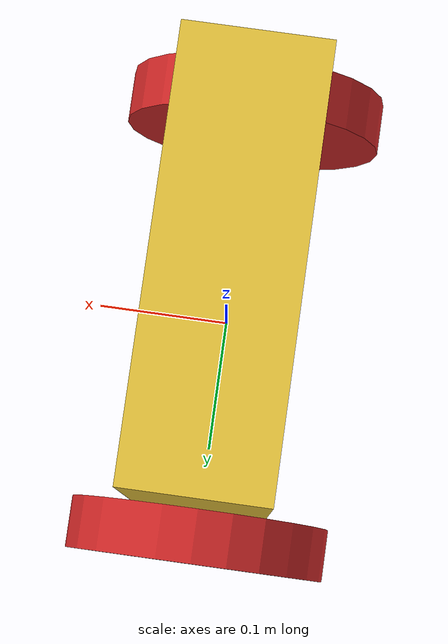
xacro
<?xml version="1.0" ?>
<robot name="2wheel" xmlns:xacro="http://www.ros.org/wiki/xacro">

  <material name="black">
    <color rgba="0.0 0.0 0.0 1.0"/>
  </material>
  <material name="blue">
    <color rgba="0.203125 0.23828125 0.28515625 1.0"/>
  </material>
  <material name="green">
    <color rgba="0.0 0.8 0.0 1.0"/>
  </material>
  <material name="grey">
    <color rgba="0.2 0.2 0.2 1.0"/>
  </material>
  <material name="orange">
    <color rgba="1.0 0.423529411765 0.0392156862745 1.0"/>
  </material>
  <material name="brown">
    <color rgba="0.870588235294 0.811764705882 0.764705882353 1.0"/>
  </material>
  <material name="red">
    <color rgba="0.80078125 0.12890625 0.1328125 1.0"/>
  </material>
  <material name="white">
    <color rgba="1.0 1.0 1.0 1.0"/>
  </material>
  <material name="plank">
    <color rgba="0.9098 0.77255 0.2314 1.0"/>
  </material>

<!-- Start: For URDF to Gazebo compatibility -->
	<!-- LINKS -->
  <gazebo reference="link_chassis">
    <material>Gazebo/Yellow</material>
		<disableFixedJointLumping>true</disableFixedJointLumping>
		<preserveFixedJoint>true</preserveFixedJoint>
  </gazebo>
  <gazebo reference="link_left_wheel">
    <material>Gazebo/Red</material>
    <mu1>0.4</mu1>
    <mu2>0.4</mu2>
  </gazebo>
  <gazebo reference="link_right_wheel">
    <material>Gazebo/Red</material>
    <mu1>0.4</mu1>
    <mu2>0.4</mu2>
  </gazebo>
	<!-- JOINTS -->
  <gazebo reference="joint_right_wheel">
		<axis>
			<xyz>0 1 0</xyz>
			<dynamics>
		    <damping>5</damping>
		    <friction>0</friction>
		    <spring_reference>-0.7853981633974483</spring_reference>
		    <spring_stiffness>7</spring_stiffness>
		  </dynamics>
		</axis>
  </gazebo>
  <gazebo reference="joint_left_wheel">
  </gazebo>

  <gazebo>
    <plugin filename="libgazebo_ros_diff_drive.so" name="differential_drive_controller">
      <legacyMode>false</legacyMode>
      <alwaysOn>true</alwaysOn>
      <updateRate>10</updateRate>
      <leftJoint>joint_left_wheel</leftJoint>
      <rightJoint>joint_right_wheel</rightJoint>
      <wheelSeparation>0.34</wheelSeparation>
      <wheelDiameter>0.2</wheelDiameter>
      <wheelTorque>0.8</wheelTorque>
      <commandTopic>cmd_vel</commandTopic>
      <odometryTopic>odom</odometryTopic>
      <odometryFrame>odom</odometryFrame>
      <robotBaseFrame>link_chassis</robotBaseFrame>
    </plugin>
  </gazebo>

  <gazebo>
      <plugin name="imu_plugin" filename="libgazebo_ros_imu.so">
          <alwaysOn>true</alwaysOn>
					<updateRate>100</updateRate>
          <bodyName>dummy_link</bodyName>
          <topicName>imu</topicName>
          <serviceName>imu_service</serviceName>
          <gaussianNoise>0.0</gaussianNoise>
          <rpyOffsets>0 0 0</rpyOffsets>
					<xyzOffset>0 0 0.3</xyzOffset>

          <accelDrift>0.5 0.5 0.5</accelDrift>
          <accelGaussianNoise>0.35 0.35 0.3</accelGaussianNoise>
          <rateDrift>0.0 0.0 0.0</rateDrift>
          <rateGaussianNoise>0.00 0.00 0.00</rateGaussianNoise>
          <headingDrift>0.0</headingDrift>
          <headingGaussianNoise>0.00</headingGaussianNoise>
      </plugin>
   </gazebo>
<!-- xyzOffset is a workaround for problem. check generated code with gz sdf -p 2wheel.xacro-->

<!-- End: For URDF to Gazebo compatibility -->

	<link name="dummy_link"/>
	<link name="imu_link">
    <inertial>
      <mass value="0.0001"/>
      <origin rpy="0 0 0" xyz="0 0 0"/>
      <inertia ixx="0.000001" ixy="0" ixz="0" iyy="0.000001" iyz="0" izz="0.000001"/>
    </inertial>
  </link>

  <link name="link_chassis">
    <!-- pose and inertial -->
    <pose>0 0 0.1 0 0 0</pose>
    <inertial>
      <mass value="2"/>
      <origin rpy="0 0 0" xyz="0 0 0.3"/>
      <inertia ixx="0.075" ixy="0" ixz="0" iyy="0.061667" iyz="0" izz="0.01667"/>
    </inertial>
    <!-- body -->
    <collision name="collision_chassis">
      <origin rpy="0 0 0" xyz="0 0 0.3"/>
      <geometry>
        <box size="0.1 0.3 0.6"/>
      </geometry>
    </collision>
    <visual>
			<origin rpy="0 0 0" xyz="0 0 0"/>
      <geometry>
       	<box size="0.1 0.3 0.6"/>
      </geometry>
      <material name="plank"/>
    </visual>
  </link>

	<joint name="base_joint" type="fixed">
    <origin rpy="0 0 0" xyz="0 0 0"/>
		<child link="link_chassis"/>
    <parent link="dummy_link"/>
  </joint>
	<joint name="imu_joint" type="fixed">
    <origin rpy="0 0 0" xyz="0 0 0.3"/>
		<child link="imu_link"/>
    <parent link="link_chassis"/>
  </joint>

  <link name="link_left_wheel">
    <inertial>
      <mass value="0.2"/>
      <origin rpy="0 1.5707 1.5707" xyz="0 0 0"/>
      <inertia ixx="0.001" ixy="0" ixz="0" iyy="0.0005" iyz="0" izz="0.0005"/>
    </inertial>
    <collision name="link_left_wheel_collision">
      <origin rpy="0 1.5707 1.5707" xyz="0 0 0"/>
      <geometry>
        <cylinder length="0.04" radius="0.1"/>
      </geometry>
    </collision>
    <visual name="link_left_wheel_visual">
      <origin rpy="0 1.5707 1.5707" xyz="0 0 0"/>
      <geometry>
        <cylinder length="0.04" radius="0.1"/>
      </geometry>
    </visual>
  </link>

  <joint name="joint_left_wheel" type="continuous">
    <origin rpy="0 0 0" xyz="0 0.17 0"/>
    <child link="link_left_wheel"/>
    <parent link="link_chassis"/>
    <axis rpy="0 0 0" xyz="0 1 0"/>
    <limit effort="0.8" velocity="30"/>
    <joint_properties damping="0.0005" friction="0.0005"/>  <!-- damping coefficient: [N*m*s/rad] -->
		<safety_controller k_velocity="0.026"/>  <!-- Kv en este caso: Torque/vel (http://wiki.ros.org/pr2_controller_manager/safety_limits) -->
  </joint>

  <link name="link_right_wheel">
    <inertial>
      <mass value="0.2"/>
      <origin rpy="0 1.5707 1.5707" xyz="0 0 0"/>
      <inertia ixx="0.001" ixy="0" ixz="0" iyy="0.0005" iyz="0" izz="0.0005"/>
    </inertial>
    <collision name="link_right_wheel_collision">
      <origin rpy="0 1.5707 1.5707" xyz="0 0 0"/>
      <geometry>
        <cylinder length="0.04" radius="0.1"/>
      </geometry>
    </collision>
    <visual name="link_right_wheel_visual">
      <origin rpy="0 1.5707 1.5707" xyz="0 0 0"/>
      <geometry>
        <cylinder length="0.04" radius="0.1"/>
      </geometry>
    </visual>
  </link>

  <joint name="joint_right_wheel" type="continuous">
    <origin rpy="0 0 0" xyz="0 -0.17 0"/>
    <child link="link_right_wheel"/>
    <parent link="link_chassis"/>
    <axis rpy="0 0 0" xyz="0 1 0"/>
    <limit effort="0.8" velocity="30"/>
    <joint_properties damping="0.0005" friction="0.0005"/>  <!-- damping coefficient: [N*m*s/rad] -->
		<safety_controller k_velocity="0.026"/>  <!-- Kv en este caso: Torque/vel (http://wiki.ros.org/pr2_controller_manager/safety_limits) -->
  </joint>
</robot>
